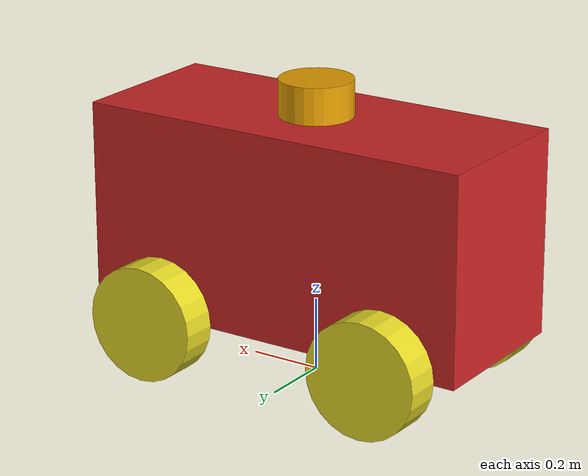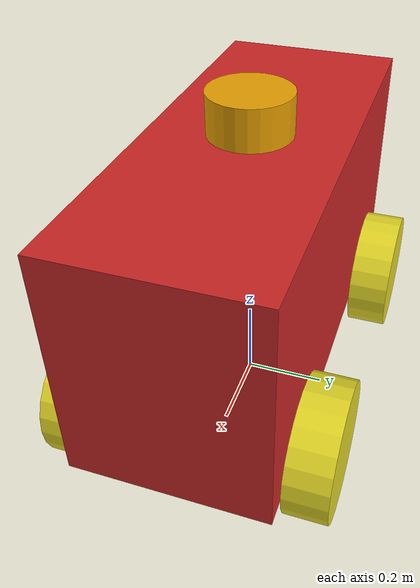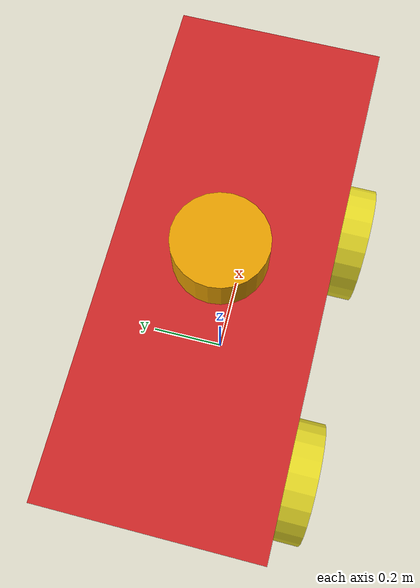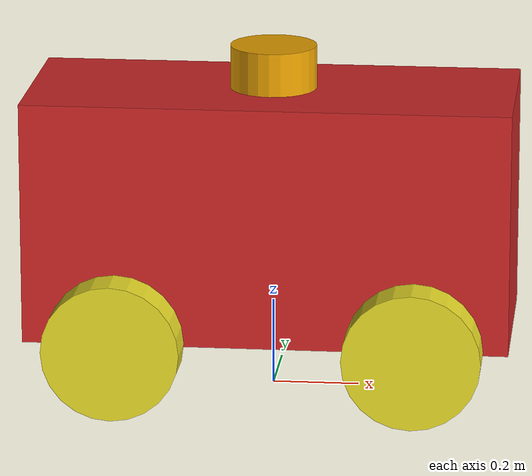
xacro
<?xml version="1.0"?>
<robot name="mobile_robot" xmlns:xacro="http://www.ros.org/wiki/xacro">

    <xacro:property name="pi_const" value="3.14159265"/>

    <xacro:property name="a" value="1.1176" />
    <xacro:property name="b" value="0.4572" />
    <xacro:property name="c" value="0.562" />

    <xacro:property name="r" value="0.15875" />
    <xacro:property name="d" value="0.1016" />

    <xacro:property name="s1" value="0.4318" />

    <xacro:property name="s2" value="0.3429" />
    <xacro:property name="s3" value="0.3429" />

    <xacro:property name="s4" value="0.2794" />

    <xacro:property name="m1" value="40.0" />
    <xacro:property name="m2" value="3.0" />

    <xacro:property name="Ix_body" value="${(1/12)*m1*(b*b+c*c)}"/>
    <xacro:property name="Iy_body" value="${(1/12)*m1*(a*a+b*b)}"/>
    <xacro:property name="Iz_body" value="${(1/12)*m1*(a*a+c*c)}"/>

    <xacro:property name="Iz_wheel" value="${0.5*m2*r*r}"/>
    <xacro:property name="I_wheel" value="${(1.0/12.0)*m2*(3.0*r*r+d*d)}"/>

    <xacro:macro name="inertia_body">
        <inertial>
        <origin rpy="0 0 0" xyz="0 0 ${s1}"/>
        <mass value="${m1}"/>
        <inertia ixx="${Ix_body}" ixy="0.0" ixz="0.0" iyy="${Iy_body}" iyz="0" izz="${Iz_body}"/>
        </inertial>
    </xacro:macro>

    <xacro:macro name="inertia_wheel">
        <inertial>
        <origin rpy="1.570795 0 0" xyz="0 0 0"/>
        <mass value="${m2}"/>
        <inertia ixx="${I_wheel}" ixy="0.0" ixz="0.0" iyy="${I_wheel}" iyz="0" izz="${Iz_wheel}"/>
        </inertial>
    </xacro:macro>

    <xacro:include filename="$(find mobile_robot)/model/robot.gazebo"/>

    <link name="base_footprint"> </link>
    <joint name="body_link_joint" type="fixed">
        <parent link="base_footprint"/>
        <child link="body_link"/>
    </joint>

    <link name="body_link">
        <visual>
            <geometry>
                <box size="${a} ${b} ${c}"/>
            </geometry>
        <origin rpy="0 0 0" xyz="0 0 ${s1}"/>
        </visual>
        <collision>
            <geometry>
                <box size="${a} ${c} ${b}"/>
            </geometry>
            <origin rpy="0 0 0" xyz="0 0 ${s1}"/>
        </collision>
        <xacro:inertia_body/>
    </link>

    <joint name="wheel1_joint" type="continuous">
        <parent link="body_link"/>
        <child link="wheel1_link"/>
        <origin xyz="${-s2} ${-s4} ${r}" rpy="0 0 0"/>
        <axis xyz="0 1 0"/>
        <limit effort="50000" velocity="10"/>
        <dynamics damping="1.0" friction="1.0"/>
    </joint>

    <link name="wheel1_link">
        <visual>
            <origin rpy="1.570795 0 0" xyz="0 0 0"/>
            <geometry>
                <cylinder length="${d}" radius="${r}"/>
            </geometry>
        </visual>
        <collision>
            <origin rpy="1.570795 0 0" xyz="0 0 0"/>
            <geometry>
                <cylinder length="${d}" radius="${r}"/>
            </geometry>
        </collision>
        <xacro:inertia_wheel/>
    </link>

    <joint name="wheel2_joint" type="continuous">
        <parent link="body_link"/>
        <child link="wheel2_link"/>
        <origin xyz="${-s2} ${s4} ${r}" rpy="0 0 0"/>
        <axis xyz="0 1 0"/>
        <limit effort="50000" velocity="10"/>
        <dynamics damping="1.0" friction="1.0"/>
    </joint>

    <link name="wheel2_link">
        <visual>
            <origin rpy="1.570795 0 0" xyz="0 0 0"/>
            <geometry>
                <cylinder length="${d}" radius="${r}"/>
            </geometry>
        </visual>
        <collision>
            <origin rpy="1.570795 0 0" xyz="0 0 0"/>
            <geometry>
                <cylinder length="${d}" radius="${r}"/>
            </geometry>
        </collision>
        <xacro:inertia_wheel/>
    </link>

    <xacro:macro name="steering_knuckle" params="prefix x y">
        <joint name="${prefix}_steer_joint" type="revolute">
            <parent link="body_link"/>
            <child link="${prefix}_steer_link"/>
            <origin xyz="${x} ${y} ${r}" rpy="0 0 0"/>
            <axis xyz="0 0 1"/>
            <limit lower="-0.785" upper="0.785" effort="5000" velocity="5.0"/>
            <dynamics damping="0.1" friction="0.1"/>
        </joint>

        <link name="${prefix}_steer_link">
            <inertial>
                <mass value="0.5"/>
                <origin xyz="0 0 0" rpy="0 0 0"/>
                <inertia ixx="0.001" ixy="0" ixz="0" iyy="0.001" iyz="0" izz="0.001"/>
            </inertial>
        </link>

        <joint name="${prefix}_wheel_joint" type="continuous">
            <parent link="${prefix}_steer_link"/>
            <child link="${prefix}_wheel_link"/>
            <origin xyz="0 0 0" rpy="0 0 0"/>
            <axis xyz="0 1 0"/>
            <limit effort="50000" velocity="10"/>
            <dynamics damping="1.0" friction="1.0"/>
        </joint>

        <link name="${prefix}_wheel_link">
            <visual>
                <origin rpy="1.570795 0 0" xyz="0 0 0"/>
                <geometry>
                    <cylinder length="${d}" radius="${r}"/>
                </geometry>
            </visual>
            <collision>
                <origin rpy="1.570795 0 0" xyz="0 0 0"/>
                <geometry>
                    <cylinder length="${d}" radius="${r}"/>
                </geometry>
            </collision>
            <xacro:inertia_wheel/>
        </link>
    </xacro:macro>

    <xacro:steering_knuckle prefix="front_left" x="${s3}" y="${s4}"/>
    <xacro:steering_knuckle prefix="front_right" x="${s3}" y="${-s4}"/>

    <joint name="lidar_joint" type="fixed">
        <origin xyz="0.0 0 ${s1 + (c/2)}" rpy="0 0 0"/>
        <parent link="body_link"/>
        <child link="lidar_link"/>
    </joint>

    <link name="lidar_link">
        <visual>
            <origin xyz="0 0 0.05" rpy="0 0 0"/>
            <geometry>
                <cylinder length="0.1" radius="0.1"/>
            </geometry>
        </visual>
        <collision>
            <origin xyz="0 0 0.05" rpy="0 0 0"/>
            <geometry>
                <cylinder length="0.1" radius="0.1"/>
            </geometry>
        </collision>
        <inertial>
            <mass value="1e-6"/>
            <origin xyz="0 0 0" rpy="0 0 0"/>
            <inertia ixx="1e-6" ixy="0" ixz="0" iyy="1e-6" iyz="0" izz="1e-6"/>
        </inertial>
    </link>

    <link name="imu_link">
        <visual>
            <geometry>
                <box size="0.05 0.05 0.05"/>
            </geometry>
            <material name="black"/>
        </visual>
    </link>

    <joint name="imu_joint" type="fixed">
        <parent link="body_link"/>
        <child link="imu_link"/>
        <origin xyz="0 0 ${s1}" rpy="0 0 0"/> </joint>

</robot>
